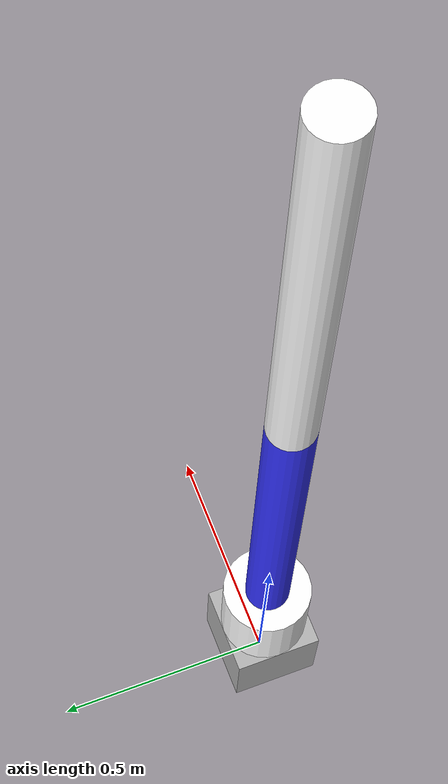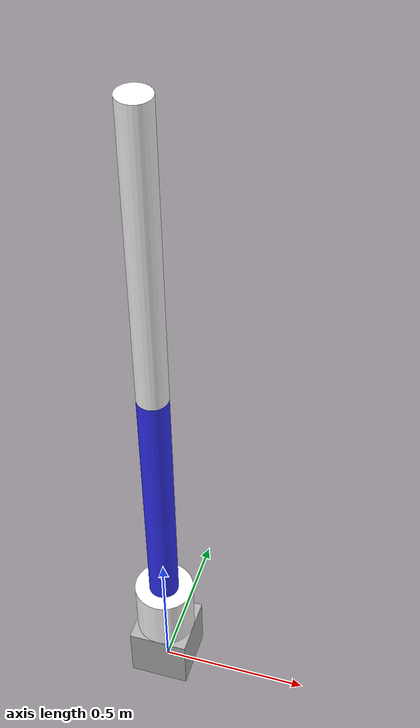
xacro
<?xml version="1.0"?>
<robot xmlns:xacro="http://www.ros.org/wiki/xacro"  name="robotic-arm">

    <xacro:include filename="robot_core.xacro" />
    <xacro:include filename="ros2_control.xacro" />

</robot>

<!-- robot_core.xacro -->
<robot xmlns:xacro="http://www.ros.org/wiki/xacro" >

    <xacro:include filename="inertial_macros.xacro"/>

    <material name="white">
        <color rgba="1 1 1 1" />
    </material>

    <material name="gray">
        <color rgba="0.7 0.7 0.7 1"/>
    </material>

    <material name="orange">
        <color rgba="1 0.3 0.1 1" />
    </material>

    <material name="blue">
        <color rgba="0.2 0.2 1 1" />
    </material>

    <material name="black">
        <color rgba="0 0 0 1" />
    </material>

    <link name="world"/>

    <joint name="base_joint" type="fixed">
        <parent link="world"/>
        <child link="base"/>
        <origin xyz="0 0 0"/>
    </joint>

    <link name="base">
        <visual>
            <origin xyz="0 0 0.1"/>
            <geometry>
                <box size="0.2 0.2 0.2"/>
            </geometry>
            <material name="gray"/>
        </visual>
        <collision>
            <origin xyz="0 0 0.1"/>
            <geometry>
                <box size="0.2 0.2 0.2"/>
            </geometry>
        </collision>
    </link>

    <joint name="axis1_joint" type="revolute">
        <parent link="base"/>
        <child link="axis1"/>
        <origin xyz="0 0 0.2"/>
        <axis xyz="0 0 1"/>
        <limit lower="-3.15" upper="3.15" effort="100" velocity="1.0"/>
    </joint>

    <link name="axis1">
        <visual>
            <origin xyz="0 0 0.1"/>
            <geometry>
                <cylinder radius="0.1" length="0.2"/>
            </geometry>
            <material name="white"/>
        </visual>
        <collision>
            <origin xyz="0 0 0.1"/>
            <geometry>
                <cylinder radius="0.1" length="0.2"/>
            </geometry>
        </collision>
        <xacro:inertial_cylinder mass="0.1" length="0.04" radius="0.05">
            <origin xyz="0 0 0" rpy="0 0 0"/>
        </xacro:inertial_cylinder>
    </link>

    <joint name="axis2_joint" type="revolute">
        <parent link="axis1"/>
        <child link="axis2"/>
        <origin xyz="0 0 0.2"/>
        <axis xyz="0 1 0"/>
        <limit lower="-1.57" upper="1.57" effort="100" velocity="1.0"/>
    </joint>

    <link name="axis2">
        <visual>
            <origin xyz="0 0 0.45"/>
            <geometry>
                <cylinder radius="0.05" length="0.9"/>
            </geometry>
            <material name="blue"/>
        </visual>
        <collision>
            <origin xyz="0 0 0.45"/>
            <geometry>
                <cylinder radius="0.05" length="0.9"/>
            </geometry>
        </collision>
        <xacro:inertial_cylinder mass="0.1" length="0.04" radius="0.05">
            <origin xyz="0 0 0" rpy="0 0 0"/>
        </xacro:inertial_cylinder>
    </link>

    <joint name="axis3_joint" type="revolute">
        <parent link="axis2"/>
        <child link="axis3"/>
        <origin xyz="0 0 0.9"/>
        <axis xyz="0 1 0"/>
        <limit lower="-3" upper="3" effort="100" velocity="1.0"/>
    </joint>

    <link name="axis3">
        <visual>
            <origin xyz="0 0 0"/>
            <geometry>
                <cylinder radius="0.04" length="0.05"/>
            </geometry>
            <material name="orange"/>
        </visual>
        <collision>
            <origin xyz="0 0 0"/>
            <geometry>
                <cylinder radius="0.04" length="0.05"/>
            </geometry>
        </collision>
        <xacro:inertial_cylinder mass="0.1" length="0.04" radius="0.05">
            <origin xyz="0 0 0" rpy="0 0 0"/>
        </xacro:inertial_cylinder>
    </link>

    <joint name="axis4_joint" type="revolute">
        <parent link="axis3"/>
        <child link="axis4"/>
        <origin xyz="0 0 0"/>
        <axis xyz="0 0 1"/>
        <limit lower="-3.15" upper="3.15" effort="100" velocity="1.0"/>
    </joint>

    <link name="axis4">
        <visual>
            <origin xyz="0 0 0.5"/>
            <geometry>
                <cylinder radius="0.05" length="1"/>
            </geometry>
            <material name="white"/>
        </visual>
        <collision>
            <origin xyz="0 0 0.5"/>
            <geometry>
                <cylinder radius="0.05" length="1"/>
            </geometry>
        </collision>
        <xacro:inertial_cylinder mass="0.1" length="0.04" radius="0.05">
            <origin xyz="0 0 0" rpy="0 0 0"/>
        </xacro:inertial_cylinder>
    </link>

</robot>
